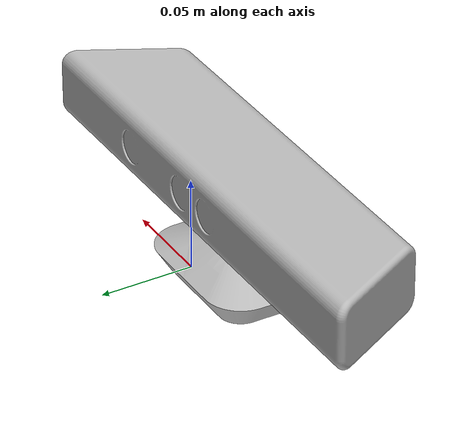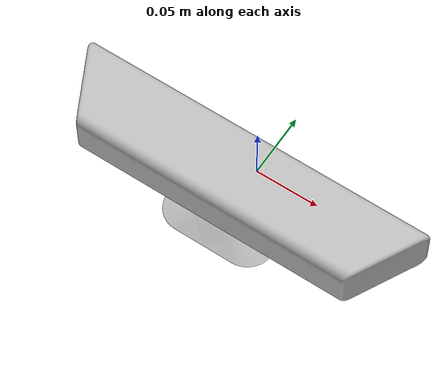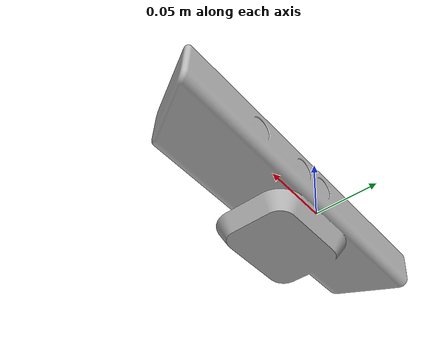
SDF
<?xml version="1.0" ?>
<sdf version="1.4">
  <model name="kinect">
    <static>true</static>
    <pose>0 0 0.036 0 0 1.57079632679</pose>
    <link name="link">
      <inertial>
        <mass>0.1</mass>
      </inertial>
      <collision name="collision">
        <geometry>
          <box>
            <size>0.073000 0.276000 0.072000</size>
          </box>
        </geometry>
      </collision>
      <visual name="visual">
        <geometry>
          <mesh>
            <uri>model://kinect/meshes/kinect.dae</uri>
          </mesh>
        </geometry>
      </visual>
      <!--RGBD camera -->
         <sensor type="depth" name="camera">
           <always_on>true</always_on>
           <visualize>false</visualize>
           <update_rate>30.0</update_rate>
           <camera name="front">
             <horizontal_fov>1.047197</horizontal_fov>
             <image>
               <!-- openni_kinect plugin works only with BGR8 -->
               <format>B8G8R8</format>
               <width>640</width>
               <height>480</height>
             </image>
             <clip>
               <near>0.01</near>
               <far>200</far>
             </clip>
           </camera>
           <plugin name="camera_controller" filename="libgazebo_ros_openni_kinect.so">
             <baseline>0.1</baseline>
             <alwaysOn>true</alwaysOn>
             <updateRate>15.0</updateRate>
             <cameraName>camera</cameraName>
             <imageTopicName>/camera/rgb/image_raw</imageTopicName>
             <cameraInfoTopicName>/camera/rgb/camera_info</cameraInfoTopicName>
             <depthImageTopicName>/camera/depth_registered/image_raw</depthImageTopicName>
             <depthImageCameraInfoTopicName>/camera/depth_registered/camera_info</depthImageCameraInfoTopicName>
             <pointCloudTopicName>/camera/depth_registered/points</pointCloudTopicName>
             <frameName>camera_rgb_optical_frame</frameName>
             <pointCloudCutoff>0.35</pointCloudCutoff>
             <pointCloudCutoffMax>4.5</pointCloudCutoffMax>
             <CxPrime>0</CxPrime>
             <Cx>0</Cx>
             <Cy>0</Cy>
             <focalLength>1060</focalLength>
             <hackBaseline>0</hackBaseline>
           </plugin>
         </sensor>
    </link>
  </model>
</sdf>
